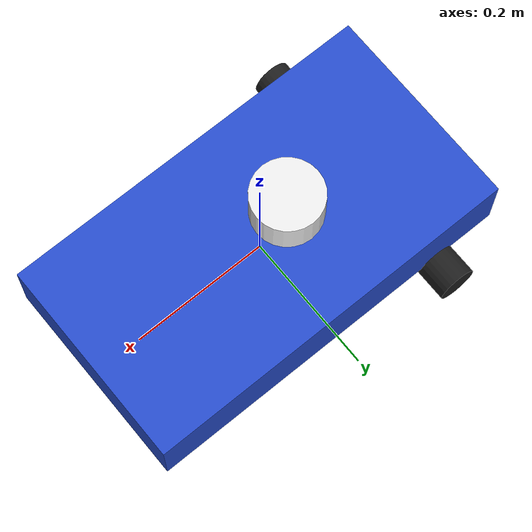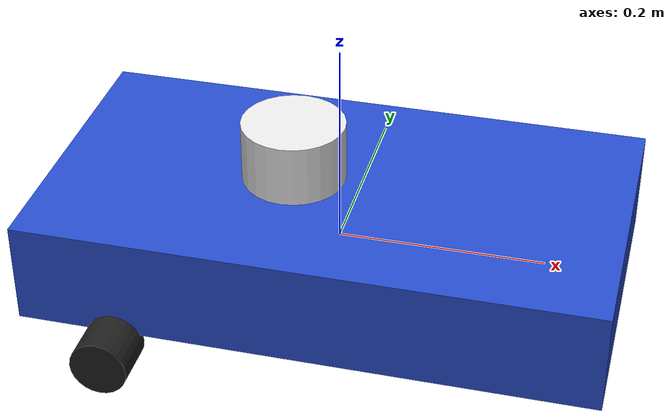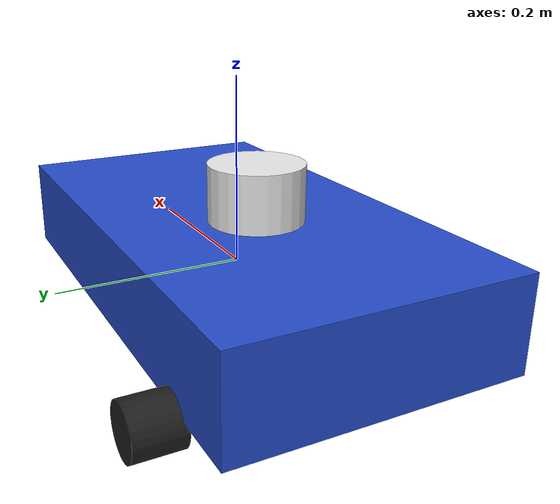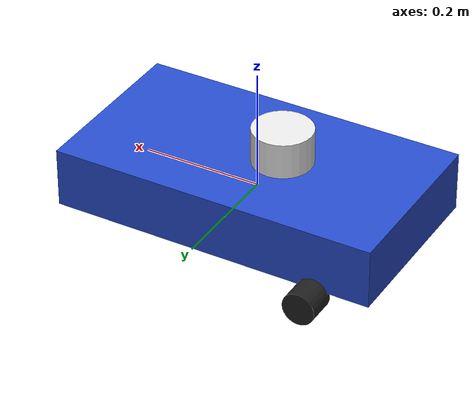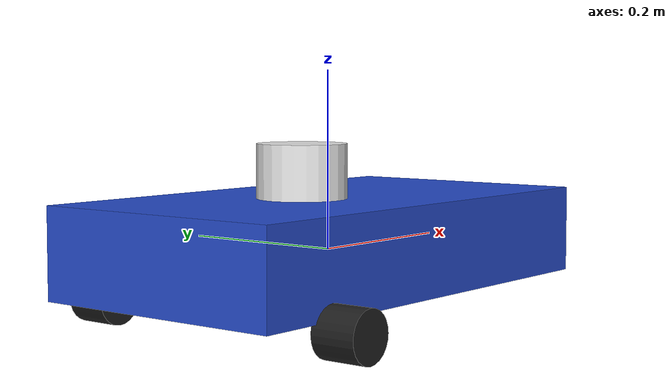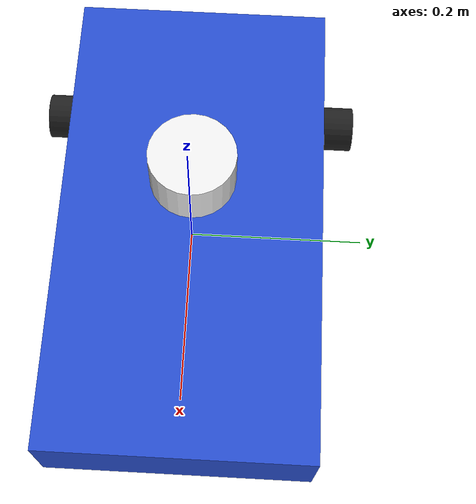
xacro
<?xml version="1.0" ?>
<robot name="myrobot" xmlns:xacro="http://www.ros.org/wiki/xacro">
    <xacro:include filename="$(find my_robot_description)/urdf/materials.xacro" />
    <xacro:include filename="$(find my_robot_description)/urdf/myrobot2.gazebo" />
    <xacro:include filename="$(find my_robot_description)/urdf/macros2.xacro" />

    <link name="base_footprint"/>

    <joint name="base_joint" type="fixed">
      <parent link="base_footprint"/>
      <child link="base_link"/>
      <origin xyz="0.0 0.0 0.010" rpy="0 0 0"/>
    </joint>

    <link name="base_link">
        <!-- pose and inertial -->
        <pose>0 0 0.1 0 0 0</pose>
        <inertial>
            <mass value="10"/>
            <origin rpy="0 0 0" xyz="0 0 0.1"/>
            <inertia ixx="0.0395416666667" ixy="0" ixz="0" iyy="0.106208333333" iyz="0" izz="0.106208333333"/>
        </inertial>
        <!-- body -->
        <collision name="collision_base_link">
            <geometry>
                <box size="0.55 0.3 0.11"/>
            </geometry>
        </collision>
        <visual>
            <origin rpy="0 0 0" xyz="0 0 0"/>
            <geometry>
                <box size="0.55 0.3 0.1"/>
            </geometry>
            <material name="blue"/>
        </visual>
    </link>

    <joint name="scan_joint" type="fixed">
        <origin xyz="-0.045 0 0.08" rpy="0 0 0"/>
        <parent link="base_link"/>
        <child link="base_scan"/>
    </joint>

    <link name="base_scan">
        <inertial>
            <origin xyz="0 0 0" rpy="0 0 0" />
            <mass value="1" />
            <xacro:cylinder_inertia mass="1" r="0.05" l="0.1" />
        </inertial>

        <visual>
            <origin xyz="0 0 0" rpy="0 0 0" />
            <geometry>
                <cylinder radius="0.05" length="0.06"/>
            </geometry>
            <material name="white" />
        </visual>

        <collision>
            <origin xyz="0 0 0" rpy="0 0 0"/>
            <geometry>
                <cylinder radius="0.05" length="0.06"/>
            </geometry>
        </collision>
    </link>

    <joint name="caster_back_joint" type="fixed">
        <parent link="base_link"/>
        <child link="caster_back_link"/>
        <origin xyz=" 0 0 0" rpy="0 0 0"/>
    </joint>

    <link name="caster_back_link">
        <collision>
            <origin rpy=" 0 0 0" xyz="0.4 0 -0.0374"/>
            <geometry>
                <sphere radius="0.05"/>
            </geometry>
            <surface>
                <friction>
                <ode>
                    <mu>0</mu>
                    <mu2>0</mu2>
                    <slip1>1.0</slip1>
                    <slip2>1.0</slip2>
                </ode>
                </friction>
            </surface>
        </collision>
        <visual>
            <origin rpy=" 0 0 0" xyz="0.2 0 -0.0374"/>
            <geometry>
                <sphere radius="0.05"/>
            </geometry>
        </visual>
    </link>

    <xacro:link_wheel name="wheel_right_link" />
    <xacro:joint_wheel name="wheel_right_joint" child="wheel_right_link" origin_xyz="-0.18 0.17 -0.06" />

    <xacro:link_wheel name="wheel_left_link" />
    <xacro:joint_wheel name="wheel_left_joint" child="wheel_left_link" origin_xyz="-0.18 -0.17 -0.06" />

</robot>

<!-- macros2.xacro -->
<robot xmlns:xacro="http://www.ros.org/wiki/xacro">
    <xacro:macro name="link_wheel" params="name">
        <link name="${name}">
            <inertial>
              <mass value="0.2"/>
              <origin rpy="0 1.5707 1.5707" xyz="0 0 0"/>
              <inertia ixx="0.000526666666667" ixy="0" ixz="0" iyy="0.000526666666667" iyz="0" izz="0.001"/>
            </inertial>
            <collision name="${name}_wheel_collision">
              <origin rpy="0 1.5707 1.5707" xyz="0 0 0"/>
              <geometry>
                <cylinder length="0.05" radius="0.0275"/>
              </geometry>
            </collision>
            <visual name="${name}_visual">
              <origin rpy="0 1.5707 1.5707" xyz="0 0 0"/>
              <geometry>
                <cylinder length="0.05" radius="0.0275"/>
              </geometry>
            </visual>
        </link>
    </xacro:macro>
    <xacro:macro name="joint_wheel" params="name child origin_xyz">
        <joint name="${name}" type="continuous">
            <origin rpy="0 0 0" xyz="${origin_xyz}"/>
            <child link="${child}"/>
            <parent link="base_link"/>
            <axis rpy="0 0 0" xyz="0 1 0"/>
            <limit effort="10000" velocity="1000"/>
            <joint_properties damping="1.0" friction="1.0"/>
        </joint>
    </xacro:macro>
    <xacro:macro name="cylinder_inertia" params="mass r l">
      <inertia  ixx="${mass*(3*r*r+l*l)/12}" ixy = "0" ixz = "0"
            iyy="${mass*(3*r*r+l*l)/12}" iyz = "0"
            izz="${mass*(r*r)/2}" />
    </xacro:macro>
</robot>
